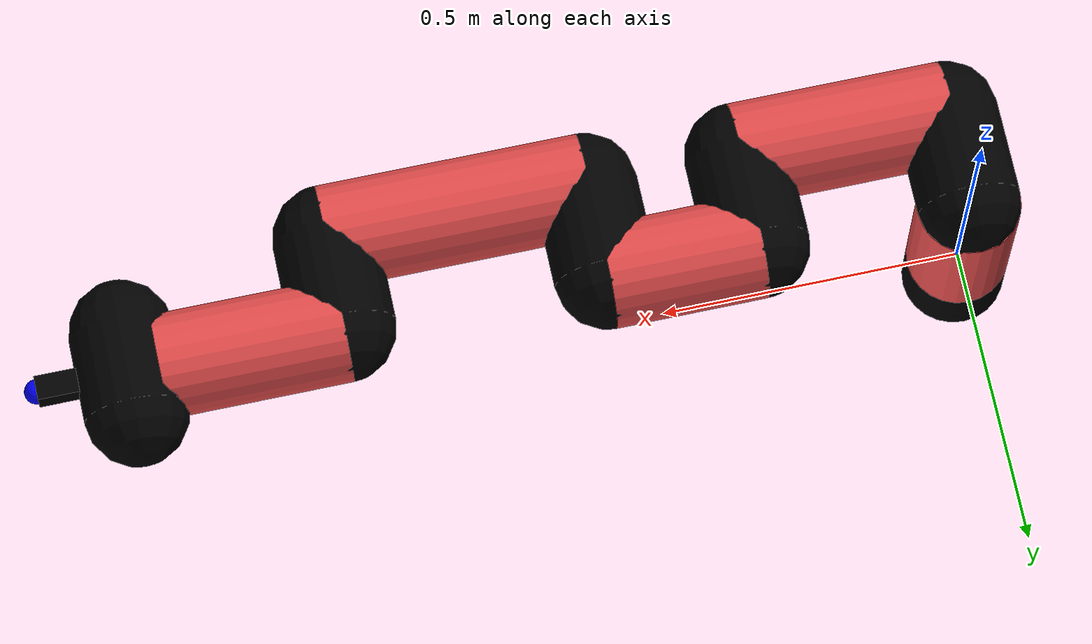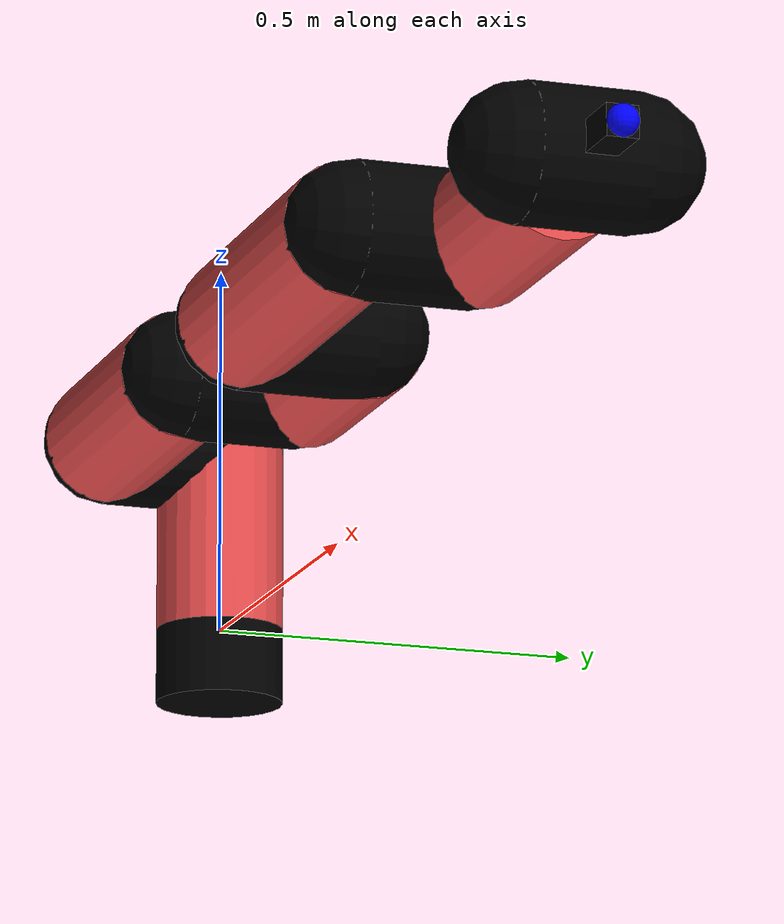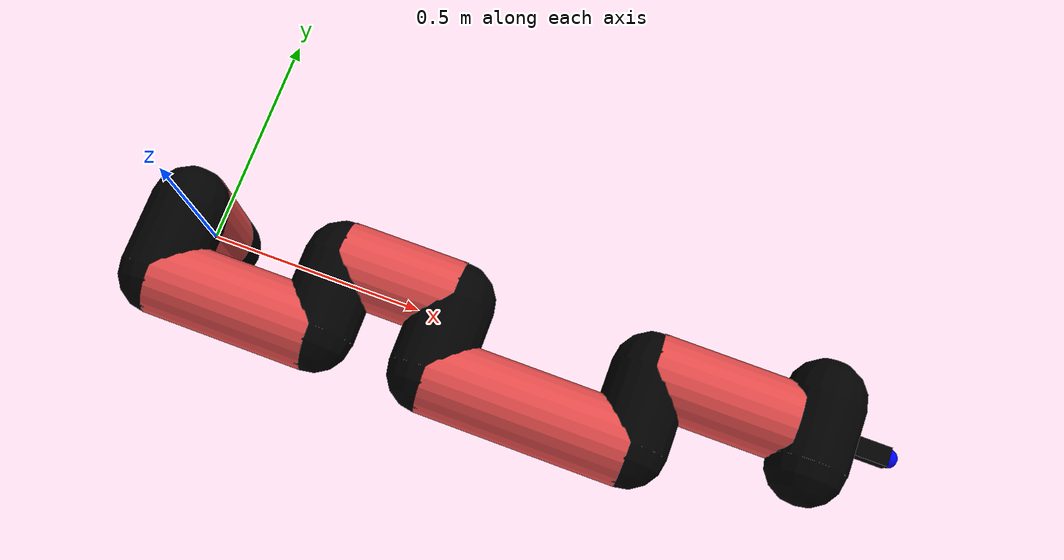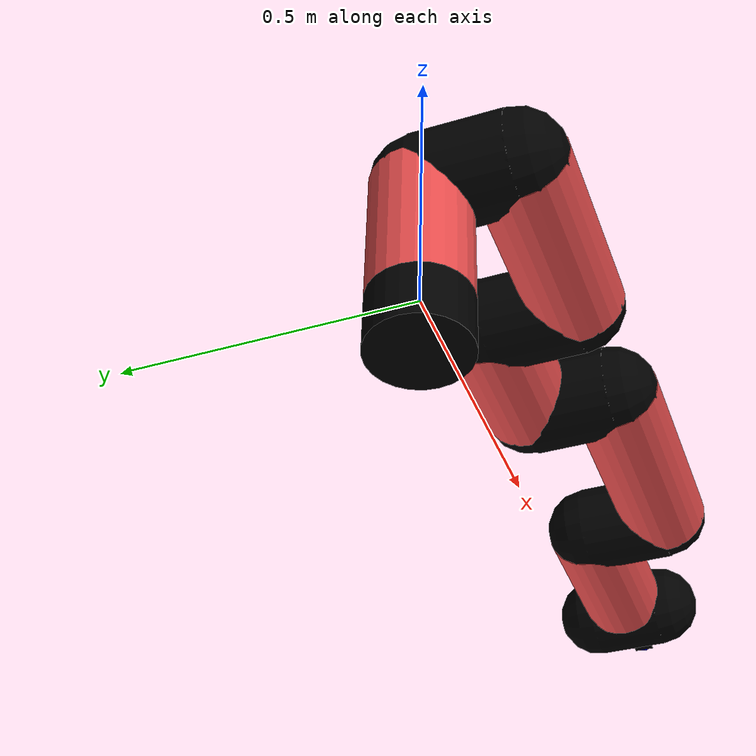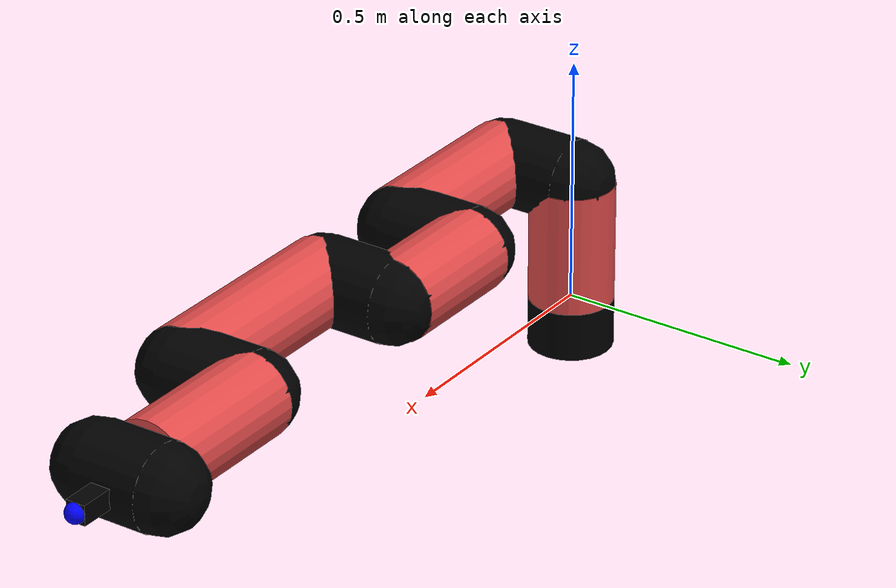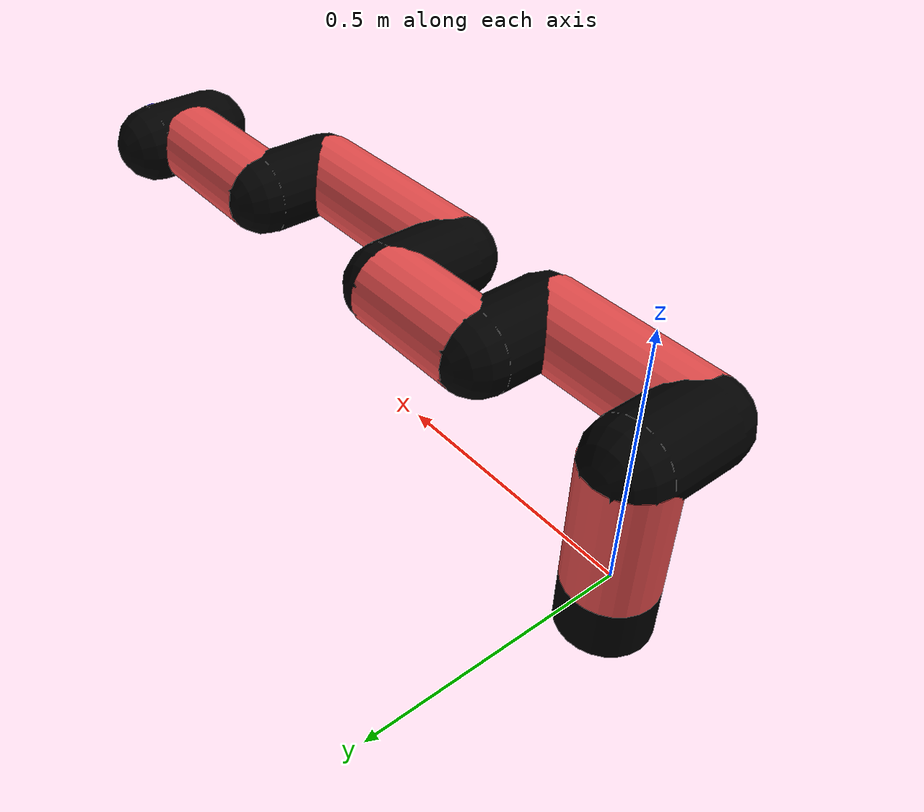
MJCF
<mujoco model="manipulator">
		<compiler angle="degree" coordinate="local" inertiafromgeom="auto" meshdir="meshes/"/>
		<option gravity="0 0 0" integrator="RK4" iterations="30" timestep="0.01"/>

		<default>
		<joint armature="1" limited="true" stiffness="10" damping="15" frictionloss="5.0"/>
		<geom conaffinity="1" condim="3" contype="1" friction=".5 .1 .1" margin="0.002"/>
		<motor ctrllimited="true"/>
		<position ctrllimited="true"/>
		</default>

		<asset>
		<texture builtin="gradient" height="100" rgb1="1.0 1.0 1.0" rgb2="1.0 1.0 1.0" type="skybox" width="100"/>
		<texture builtin="flat" height="32" name="arm_tex" rgb1="0.9 0.3 0.3" type="2d" width="32"/>
		<texture builtin="flat" height="32" name="gripper_tex" rgb1="0.0 0.0 0.0" type="cube" width="32"/>

		<material name="arm_mat" shininess="0.1" specular="0.1" texture="arm_tex"/>
		<material name="gripper_mat" shininess="1" specular="1" texture="gripper_tex"/>
		</asset>

		<worldbody>
		<light cutoff="45" diffuse=".8 .8 .8" dir="0 0.16 -1" directional="false" name="light" pos="0 -2.0 8.0" specular="0.3 0.3 0.3"/>

		<body name="base_link" pos="0 0 -0.1">
		<geom fromto="0 0 0 0 0 0.1" material="arm_mat" name="base_link" rgba="0.0 0.0 0.0 1" size="0.085" type="cylinder"/>
		</body>

		<body name="l1" pos="0 0 0">
<geom fromto="0 0 0 0 0 0.25" material="arm_mat" name="l1" rgba="0.9 0.3 0.3 1" size="0.085" type="cylinder"/>
<geom fromto="0 0 0.25 0 -0.16 0.25" material="arm_mat" name="l1_ex" rgba="0.0 0.0 0.0 1" size="0.085" type="capsule"/>
<joint axis="0 0 1" name="j1" pos="0 0 0" range="-90 90" damping="41.15" frictionloss="14.0"/>

<body name="l2" pos="0 -0.16 0.25">
<geom fromto="0 0 0 0.35 0 0" material="arm_mat" name="l2" rgba="0.9 0.3 0.3 1" size="0.085" type="cylinder"/>
<geom fromto="0.35 0 0 0.35 0.16 0" material="arm_mat" name="l2_ex" rgba="0.0 0.0 0.0 1" size="0.085" type="capsule"/>
<joint axis="0.0 1.0 0.0" name="j2" pos="0 0 0" range="-90 60" damping="24.83" frictionloss="14.87"/>

<body name="l3" pos="0.35 0.16 0">
<geom fromto="0 0 0 0.25 0 0" material="arm_mat" name="l3" rgba="0.9 0.3 0.3 1" size="0.085" type="cylinder"/>
<geom fromto="0.25 0 0 0.25 -0.16 0" material="arm_mat" name="l3_ex" rgba="0.0 0.0 0.0 1" size="0.085" type="capsule"/>
<joint axis="0.0 1.0 0.0" name="j3" pos="0 0 0" range="-30 60" damping="21.39" frictionloss="11.74"/>

<body name="l4" pos="0.25 -0.16 0">
<geom fromto="0 0 0 0.43 0 0" material="arm_mat" name="l4" rgba="0.9 0.3 0.3 1" size="0.085" type="cylinder"/>
<geom fromto="0.43 0 0 0.43 0.16 0" material="arm_mat" name="l4_ex" rgba="0.0 0.0 0.0 1" size="0.085" type="capsule"/>
<joint axis="0.0 1.0 0.0" name="j4" pos="0 0 0" range="-30 60" damping="25.32" frictionloss="13.82"/>

<body name="l5" pos="0.43 0.16 0">
<geom fromto="0 0 0 0.3 0 0" material="arm_mat" name="l5" rgba="0.9 0.3 0.3 1" size="0.085" type="cylinder"/>
<joint axis="0.0 1.0 0.0" name="j5" pos="0 0 0" range="-30 60" damping="44.57" frictionloss="7.35"/>

<body name="gripper" pos="0.3 0 0">
<geom fromto="0.05 -0.07 0 0.05 0.07 0" material="gripper_mat" name="gripper" rgba="0.0 0.0 0.0 1" size="0.085" type="capsule"/><joint axis="1 0 0" name="j6" pos="0 0 0" range="-90 90" damping="15" frictionloss="5.0"/><body name="finger" pos="0.1 0 0">
<geom fromto="0 0.0 0 0.1 0.0 0" material="gripper_mat" name="finger" rgba="0.0 0.0 0.0 1" size="0.020 0.06 0.06" type="box"/>
</body>
<site name="current" pos="0.2 0. 0.0" rgba="0. 0. 1.0 1" size="0.02" type="sphere"/>
</body>
</body>
</body>
</body>
</body>
</body>
</worldbody>
<actuator>
<motor ctrllimited="true" ctrlrange="-1.0 1.0" joint="j1" gear="41.45"/>
<motor ctrllimited="true" ctrlrange="-1.0 1.0" joint="j2" gear="102.62"/>
<motor ctrllimited="true" ctrlrange="-1.0 1.0" joint="j3" gear="107.02"/>
<motor ctrllimited="true" ctrlrange="-1.0 1.0" joint="j4" gear="94.97"/>
<motor ctrllimited="true" ctrlrange="-1.0 1.0" joint="j5" gear="98.04"/>
<motor ctrllimited="true" ctrlrange="-1.0 1.0" joint="j6" gear="80"/>
</actuator>
</mujoco>
